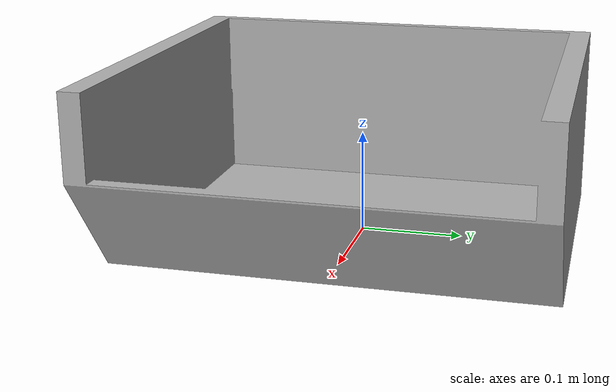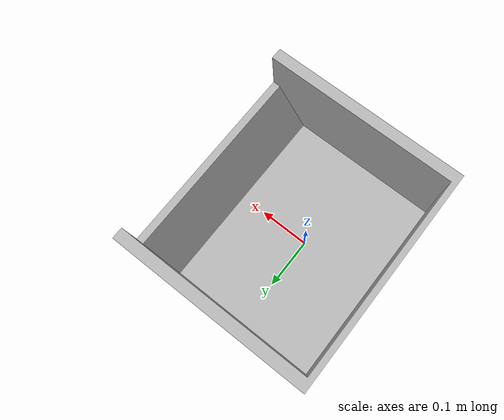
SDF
<?xml version="1.0"?>
<sdf version="1.9">
  <model name="rs6">
    <static>true</static>
    <link name="container_link">
      <collision name="collision">
        <pose>0 0 0.06 0 0 0</pose>
        <geometry>
          <box>
            <size>0.42 0.32 0.12</size>
          </box>
        </geometry>
      </collision>
      <visual name="visual">
        <pose>0 0 0 0 0 0</pose>
        <geometry>
          <mesh>
            <!-- Shared mesh under legacy scooping_container package tree. -->
            <uri>model://scooping_container/meshes/rs6_container.STL</uri>
            <scale>0.001 0.001 0.001</scale>
          </mesh>
        </geometry>
        <material>
          <ambient>0.7 0.7 0.7 1.0</ambient>
          <diffuse>0.7 0.7 0.7 1.0</diffuse>
          <specular>0.2 0.2 0.2 1.0</specular>
        </material>
      </visual>
    </link>
  </model>
</sdf>
